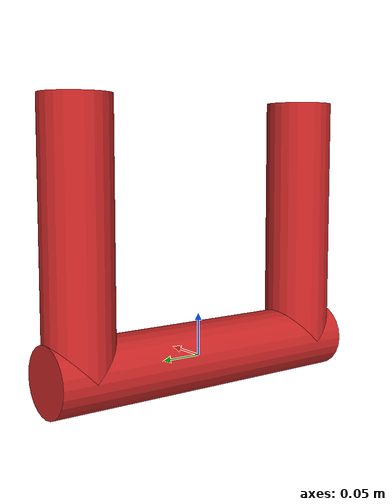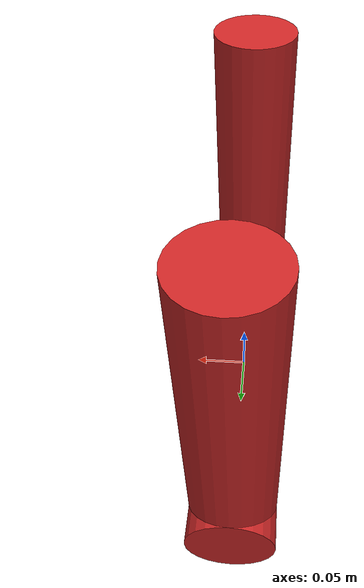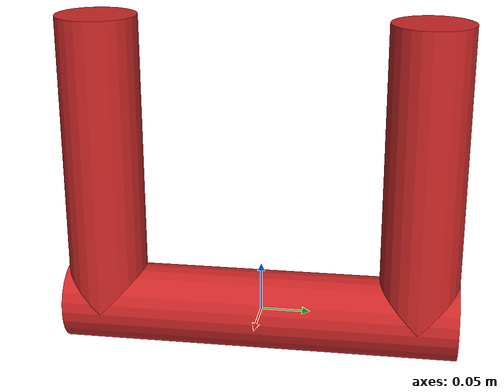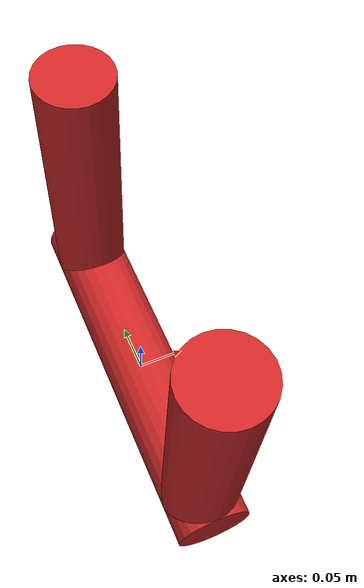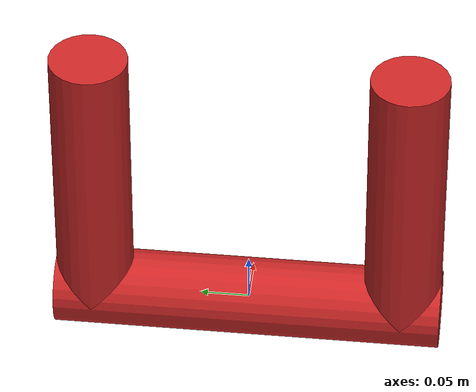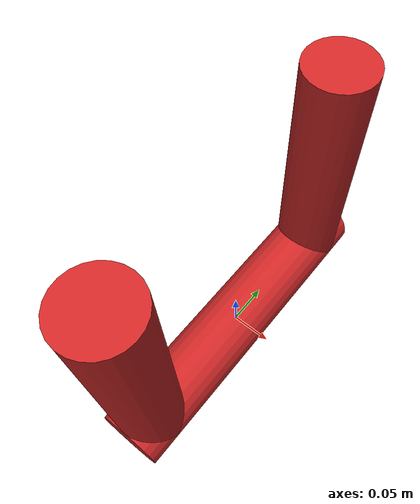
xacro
<?xml version="1.0"?>

<robot name="gripper" xmlns:xacro="http://www.ros.org/wiki/xacro">

<!-- only movable links have number in the name, like link1, link2 -->
<!-- only movable links have number in the name, like joint1, joint2 -->

	<link name="link4">
		<collision>
			<origin xyz="0 0 0" rpy="1.5708 0 0"/>
			<geometry>
				<cylinder length="0.4" radius="0.04"/>
			</geometry>
		</collision>

		<visual>
			<origin xyz="0 0 0" rpy="1.5708 0 0"/>
			<geometry>
				<cylinder length="0.4" radius="0.04"/>
			</geometry>
		</visual>

		<inertial>
			<origin xyz="0 0 0" rpy="1.5708 0 0"/>
			<mass value="0.4"/>
			<inertia
				ixx="0.05" ixy="0.0" ixz="0.0"
				iyy="0.002" iyz="0.0"
				izz="0.05"/>
		</inertial>
	</link>

	<gazebo reference="link4">
		<material>Gazebo/Red</material>
	</gazebo>

	<!-- link5 and its prismatic joint5 relative to link4 -->
	<!-- translating along y axis -->
	<joint name="joint5" type="prismatic">
		<parent link="link4"/>
		<child link="link5"/>
		<origin xyz="0 0.16 0" rpy="0 0 0"/>
		<axis xyz="0 1 0"/>
		<limit effort="100" velocity="100" lower="-0.16" upper="0.0"/>
	</joint>

	<link name="link5">
		<collision>
			<origin xyz="0 0 0.15" rpy="0 0 0"/>
			<geometry>
				<cylinder length="0.3" radius="0.04"/>
			</geometry>
		</collision>

		<visual>
			<origin xyz="0 0 0.15" rpy="0 0 0"/>
			<geometry>
				<cylinder length="0.3" radius="0.04"/>
			</geometry>
		</visual>

		<inertial>
			<origin xyz="0 0 0.15" rpy="0 0 0"/>
			<mass value="0.2"/>
			<inertia
				ixx="0.02" ixy="0.0" ixz="0.0"
				iyy="0.02" iyz="0.0"
				izz="0.001"/>
		</inertial>
	</link>

	<gazebo reference="link5">
		<material>Gazebo/Red</material>
	</gazebo>

	<!-- link6 and its prismatic joint6 relative to link4 -->
	<!-- translating along y axis -->
	<joint name="joint6" type="prismatic">
		<parent link="link4"/>
		<child link="link6"/>
		<origin xyz="0 -0.16 0" rpy="0 0 0"/>
		<axis xyz="0 1 0"/>
		<limit effort="100" velocity="100" lower="0.0" upper="0.16"/>
	</joint>

	<link name="link6">
		<collision>
			<origin xyz="0 0 0.15" rpy="0 0 0"/>
			<geometry>
				<cylinder length="0.3" radius="0.04"/>
			</geometry>
		</collision>

		<visual>
			<origin xyz="0 0 0.15" rpy="0 0 0"/>
			<geometry>
				<cylinder length="0.3" radius="0.04"/>
			</geometry>
		</visual>

		<inertial>
			<origin xyz="0 0 0.15" rpy="0 0 0"/>
			<mass value="0.2"/>
			<inertia
				ixx="0.02" ixy="0.0" ixz="0.0"
				iyy="0.02" iyz="0.0"
				izz="0.001"/>
		</inertial>
	</link>

	<gazebo reference="link6">
		<material>Gazebo/Red</material>
	</gazebo>

</robot>
